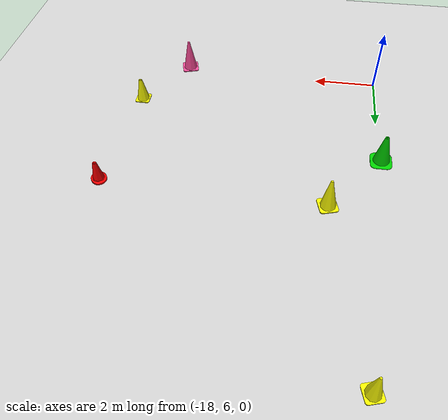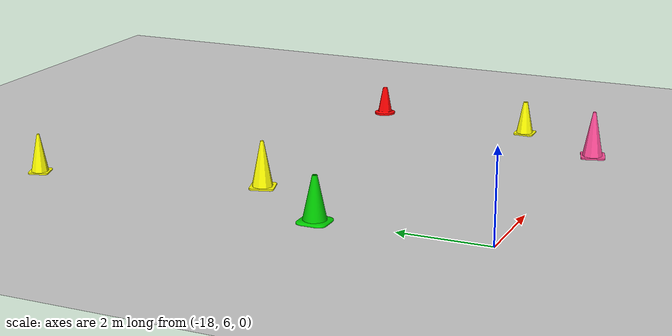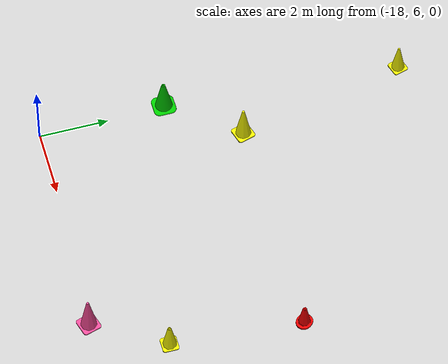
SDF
<sdf version="1.9">
 <world name="empty">
  <model name="ground_plane">
   <static>true</static>
   <link name="link">
    <collision name="collision">
     <geometry><plane><normal>0 0 1</normal><size>100 100</size></plane></geometry>
    </collision>
    <visual name="visual">
     <geometry><plane><normal>0 0 1</normal><size>100 100</size></plane></geometry>
     <material>
      <ambient>0.8 0.8 0.8 1</ambient>
      <diffuse>0.8 0.8 0.8 1</diffuse>
      <specular>0.8 0.8 0.8 1</specular>
     </material>
    </visual>
    <inertial>
     <mass>1</mass>
     <inertia><ixx>1</ixx><ixy>0</ixy><ixz>0</ixz><iyy>1</iyy><iyz>0</iyz><izz>1</izz></inertia>
    </inertial>
   </link>
  </model>
  <model name="another_cone_4">
   <static>true</static>
   <link name="link">
    <visual name="visual">
     <geometry>
      <mesh>
       <uri>file:///home/abhay-07/.gz/models/cone_3/model://cone_3/meshes/another_cone.stl</uri>
       <scale>0.3073 0.3073 0.3073</scale>
      </mesh>
     </geometry>
     <material><ambient>0.8 0.8 0.0 1</ambient><diffuse>1.0 1.0 0.0 1</diffuse></material>
    </visual>
    <collision name="collision">
     <geometry><cylinder><radius>0.0768</radius><length>0.3073</length></cylinder></geometry>
    </collision>
    <inertial>
     <mass>1</mass>
     <inertia><ixx>1</ixx><ixy>0</ixy><ixz>0</ixz><iyy>1</iyy><iyz>0</iyz><izz>1</izz></inertia>
    </inertial>
   </link>
   <pose>-13.6264 9.56344 0 0 -0 0</pose>
  </model>
  <model name="cone_3_5">
   <static>true</static>
   <link name="link">
    <visual name="visual">
     <geometry>
      <mesh>
       <uri>file:///home/abhay-07/.gz/models/cone_2/model://cone_2/meshes/cone_3.stl</uri>
       <scale>0.3079 0.3079 0.3079</scale>
      </mesh>
     </geometry>
     <material><ambient>0.8 0.0 0.0 1</ambient><diffuse>1.0 0.0 0.0 1</diffuse></material>
    </visual>
    <collision name="collision">
     <geometry><cylinder><radius>0.0770</radius><length>0.3079</length></cylinder></geometry>
    </collision>
    <inertial>
     <mass>1</mass>
     <inertia><ixx>1</ixx><ixy>0</ixy><ixz>0</ixz><iyy>1</iyy><iyz>0</iyz><izz>1</izz></inertia>
    </inertial>
   </link>
   <pose>-12.1597 9.06931 0 0 -0 0</pose>
  </model>
  <model name="football_cone_3">
   <static>true</static>
   <link name="link">
    <visual name="visual">
     <geometry>
      <mesh>
       <uri>file:///home/abhay-07/.gz/models/cone_4/model://cone_4/meshes/football_cone.stl</uri>
       <scale>0.3256 0.3256 0.3256</scale>
      </mesh>
     </geometry>
     <material><ambient>0.0 0.6 0.0 1</ambient><diffuse>0.0 0.8 0.0 1</diffuse></material>
    </visual>
    <collision name="collision">
     <geometry><cylinder><radius>0.0814</radius><length>0.3256</length></cylinder></geometry>
    </collision>
    <inertial>
     <mass>1</mass>
     <inertia><ixx>1</ixx><ixy>0</ixy><ixz>0</ixz><iyy>1</iyy><iyz>0</iyz><izz>1</izz></inertia>
    </inertial>
   </link>
   <pose>-18.7398 8.70624 0 0 -0 0</pose>
  </model>
  <model name="safety_cone_2">
   <static>true</static>
   <link name="link">
    <visual name="visual">
     <geometry>
      <mesh>
       <uri>file:///home/abhay-07/.gz/models/cone_5/model://cone_5/meshes/safety_cone.stl</uri>
       <scale>0.3563 0.3563 0.3563</scale>
      </mesh>
     </geometry>
     <material><ambient>0.8 0.8 0.0 1</ambient><diffuse>1.0 1.0 0.0 1</diffuse></material>
    </visual>
    <collision name="collision">
     <geometry><cylinder><radius>0.0891</radius><length>0.3563</length></cylinder></geometry>
    </collision>
    <inertial>
     <mass>1</mass>
     <inertia><ixx>1</ixx><ixy>0</ixy><ixz>0</ixz><iyy>1</iyy><iyz>0</iyz><izz>1</izz></inertia>
    </inertial>
   </link>
   <pose>-24.376 13.3878 0 0 -0 0</pose>
  </model>
  <model name="safety_cone_3">
   <static>true</static>
   <link name="link">
    <visual name="visual">
     <geometry>
      <mesh>
       <uri>file:///home/abhay-07/.gz/models/cone_5/model://cone_5/meshes/safety_cone.stl</uri>
       <scale>0.2995 0.2995 0.2995</scale>
      </mesh>
     </geometry>
     <material><ambient>0.8 0.8 0.0 1</ambient><diffuse>1.0 1.0 0.0 1</diffuse></material>
    </visual>
    <collision name="collision">
     <geometry><cylinder><radius>0.0749</radius><length>0.2995</length></cylinder></geometry>
    </collision>
    <inertial>
     <mass>1</mass>
     <inertia><ixx>1</ixx><ixy>0</ixy><ixz>0</ixz><iyy>1</iyy><iyz>0</iyz><izz>1</izz></inertia>
    </inertial>
   </link>
   <pose>-24.1766 18.0512 0 0 -0 0</pose>
  </model>
  <model name="safety_cone_4">
   <static>true</static>
   <link name="link">
    <visual name="visual">
     <geometry>
      <mesh>
       <uri>file:///home/abhay-07/.gz/models/cone_5/model://cone_5/meshes/safety_cone.stl</uri>
       <scale>0.3642 0.3642 0.3642</scale>
      </mesh>
     </geometry>
     <material><ambient>0.8 0.2 0.5 1</ambient><diffuse>1.0 0.3 0.6 1</diffuse></material>
    </visual>
    <collision name="collision">
     <geometry><cylinder><radius>0.0911</radius><length>0.3642</length></cylinder></geometry>
    </collision>
    <inertial>
     <mass>1</mass>
     <inertia><ixx>1</ixx><ixy>0</ixy><ixz>0</ixz><iyy>1</iyy><iyz>0</iyz><izz>1</izz></inertia>
    </inertial>
   </link>
   <pose>-19.4814 7.57679 0 0 -0 0</pose>
  </model>
 </world>
</sdf>
